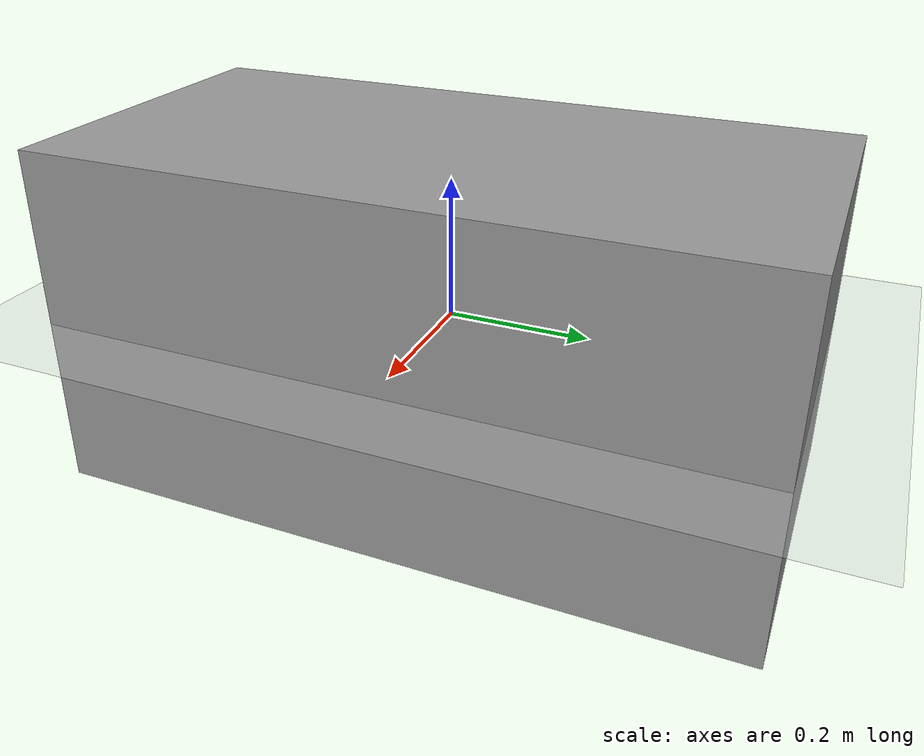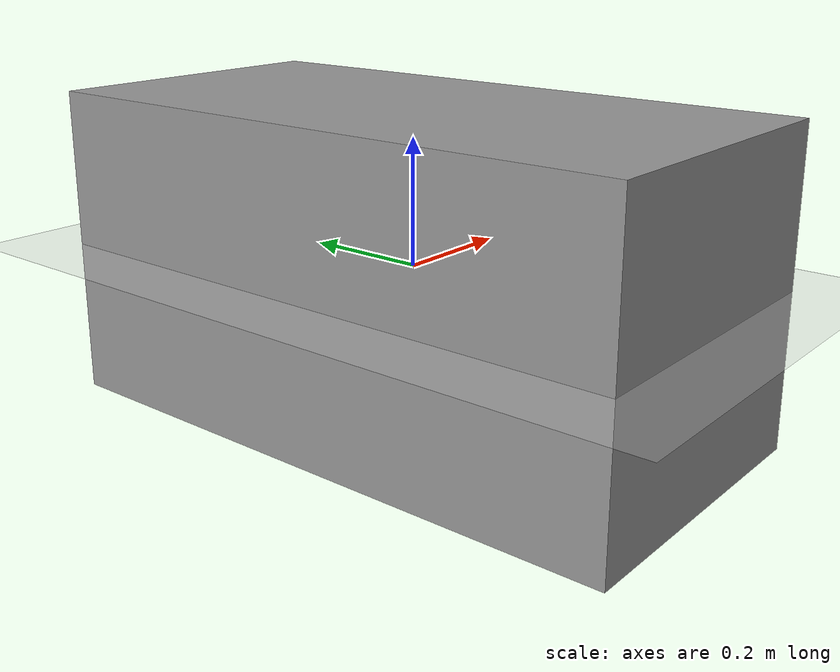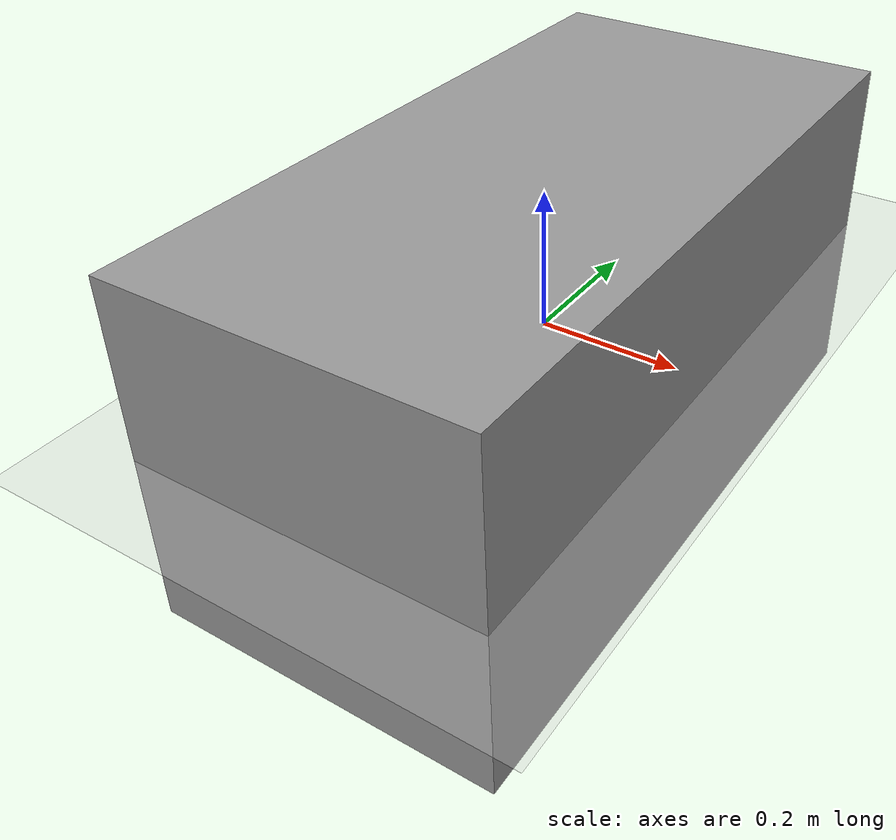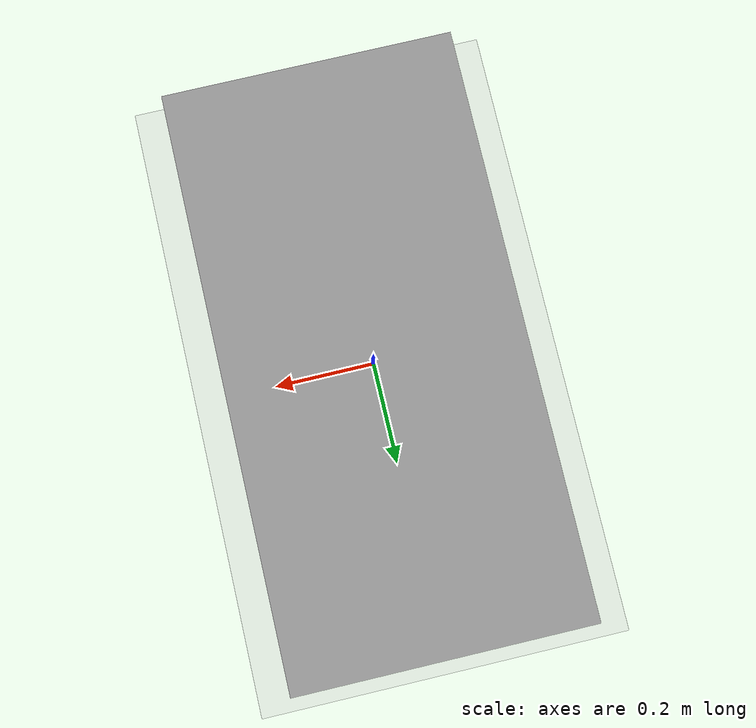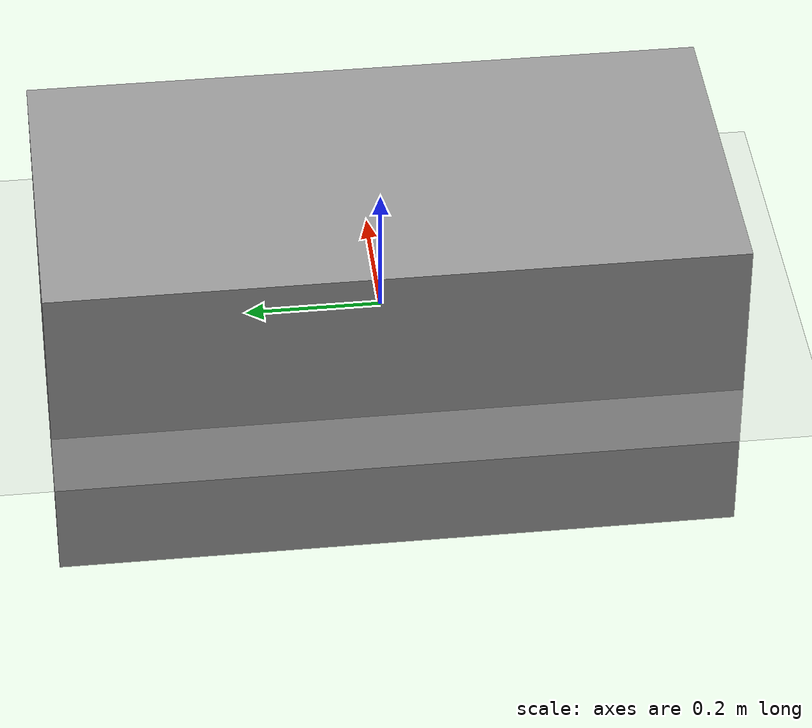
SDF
<sdf version="1.6">
 <world name="default">
  <gravity>0 0 -9.8</gravity>
  <magnetic_field>6e-06 2.3e-05 -4.2e-05</magnetic_field>
  <atmosphere type="adiabatic"/>
  <physics name="default_physics" default="0" type="ode">
   <max_step_size>0.001</max_step_size>
   <real_time_factor>1</real_time_factor>
   <real_time_update_rate>1000</real_time_update_rate>
  </physics>
  <light name="sun" type="directional">
   <diffuse>1 1 1 1</diffuse>
   <specular>0.8 0.8 0.8 1</specular>
   <direction>-0.5 -0.5 -1</direction>
   <pose>0 0 2 0 0 0</pose>
   <attenuation>
    <range>1000</range>
    <constant>1</constant>
    <linear>1</linear>
    <quadratic>0.001</quadratic>
   </attenuation>
  </light>
  <model name="ground_plane">
   <static>1</static>
   <link name="link">
    <collision name="collision">
     <geometry><plane><size>100 100</size><normal>0 0 1</normal></plane></geometry>
    </collision>
    <visual name="visual">
     <geometry><plane><size>100 100</size><normal>0 0 1</normal></plane></geometry>
     <material>
      <script><uri>file://media/materials/scripts/gazebo.material</uri><name>Gazebo/Grey</name></script>
     </material>
    </visual>
    <kinematic>1</kinematic>
   </link>
  </model>
  <scene><ambient>0.4 0.4 0.4 1</ambient><background>0.7 0.7 0.7 1</background><shadows>1</shadows></scene>
  <audio><device>default</device></audio>
  <spherical_coordinates>
   <surface_model>EARTH_WGS84</surface_model>
   <latitude_deg>0</latitude_deg>
   <longitude_deg>0</longitude_deg>
   <elevation>0</elevation>
   <heading_deg>0</heading_deg>
  </spherical_coordinates>
  <model name="table">
   <static>1</static>
   <link name="link">
    <inertial>
     <mass>1</mass>
     <inertia>
      <ixx>0.166667</ixx>
      <ixy>0</ixy>
      <ixz>0</ixz>
      <iyy>0.166667</iyy>
      <iyz>0</iyz>
      <izz>0.166667</izz>
     </inertia>
    </inertial>
    <collision name="collision">
     <geometry><box><size>0.5 1 0.5</size></box></geometry>
     <surface><friction><mu>1.13</mu><mu2>1.13</mu2></friction></surface>
    </collision>
    <visual name="visual">
     <geometry><box><size>0.5 1 0.5</size></box></geometry>
     <material>
      <script><name>Gazebo/Grey</name><uri>file://media/materials/scripts/gazebo.material</uri></script>
     </material>
    </visual>
   </link>
  </model>
 </world>
</sdf>
